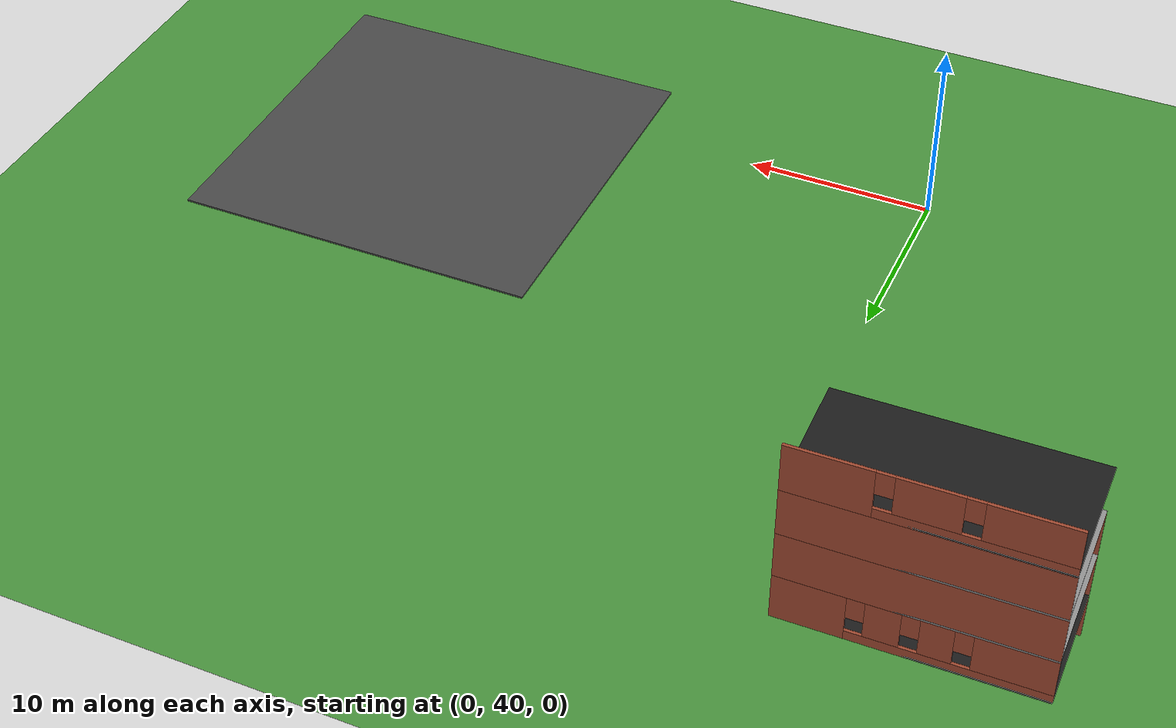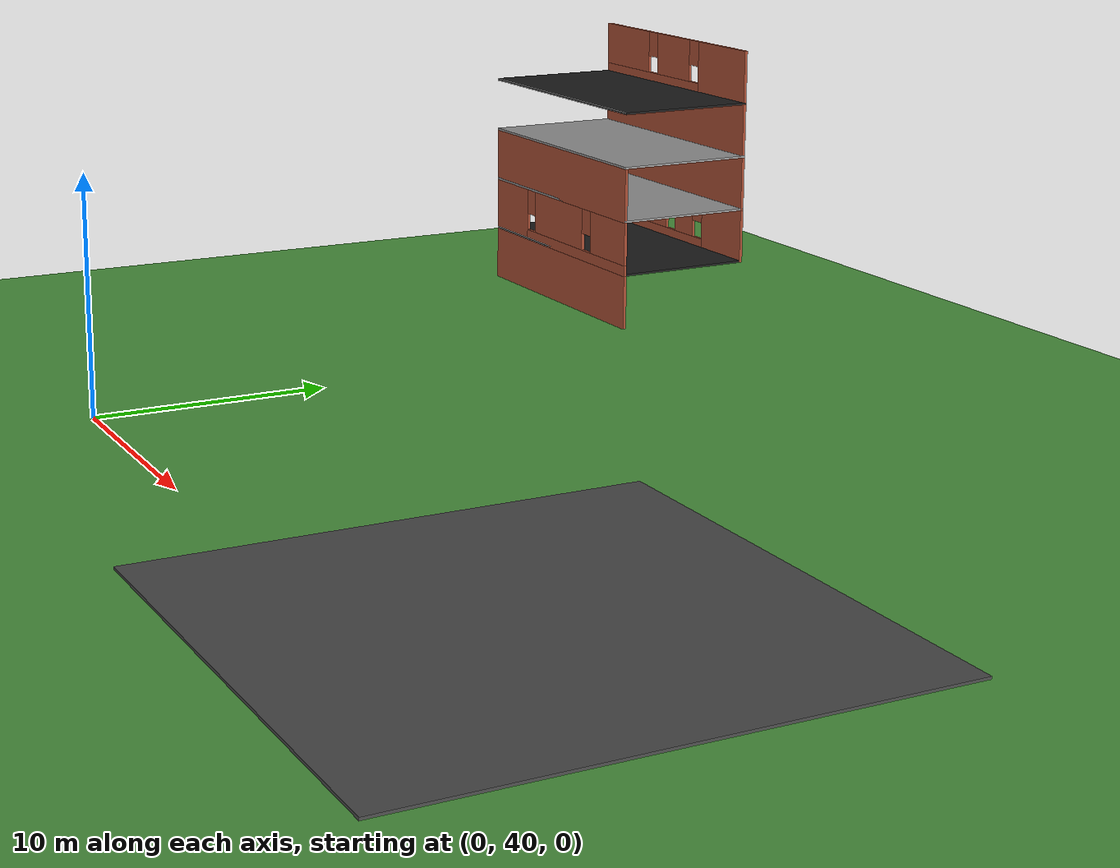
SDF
<sdf version="1.7">
 <world name="default">
  <model name="ground_plane">
   <static>1</static>
   <link name="link">
    <collision name="collision">
     <geometry><plane><normal>0 0 1</normal><size>100 100</size></plane></geometry>
     <surface>
      <contact><collide_bitmask>65535</collide_bitmask></contact>
      <friction><ode><mu>100</mu><mu2>50</mu2></ode></friction>
     </surface>
    </collision>
    <visual name="grass">
     <pose>0 0 -0.1 0 -0 0</pose>
     <cast_shadows>0</cast_shadows>
     <geometry><plane><normal>0 0 1</normal><size>1000 1000</size></plane></geometry>
     <material>
      <script><uri>file://media/materials/scripts/gazebo.material</uri><name>Gazebo/Grass</name></script>
     </material>
    </visual>
   </link>
  </model>
  <model name="asphalt_plane">
   <static>1</static>
   <link name="link">
    <collision name="collision"><geometry><box><size>20 20 0.1</size></box></geometry></collision>
    <visual name="visual">
     <cast_shadows>0</cast_shadows>
     <geometry><box><size>20 20 0.1</size></box></geometry>
     <material>
      <script>
       <uri>model://asphalt_plane/materials/scripts</uri>
       <uri>model://asphalt_plane/materials/textures</uri>
       <name>vrc/asphalt</name>
      </script>
     </material>
    </visual>
   </link>
   <pose>26.7323 45.4974 0 0 -0 0</pose>
  </model>
  <model name="my_building_1_clone_1">
   <link name="Floor_13">
    <pose>-4.12557 0 2.5 0 -0 0</pose>
    <inertial>
     <mass>1</mass>
     <inertia><ixx>1</ixx><ixy>0</ixy><ixz>0</ixz><iyy>1</iyy><iyz>0</iyz><izz>1</izz></inertia>
    </inertial>
    <visual name="Floor_13_Visual">
     <pose>0 0 0.05 0 -0 0</pose>
     <geometry><box><size>6.5 12.25 0.1</size></box></geometry>
     <material>
      <script><uri>file://media/materials/scripts/gazebo.material</uri><name>Gazebo/Black</name></script>
      <ambient>1 1 1 1</ambient>
      <shader type="pixel"><normal_map>__default__</normal_map></shader>
      <diffuse>0 0 0 1</diffuse>
      <specular>0.1 0.1 0.1 1</specular>
      <emissive>0 0 0 1</emissive>
     </material>
     <meta><layer>1</layer></meta>
    </visual>
    <collision name="Floor_13_Collision">
     <pose>0 0 0.05 0 -0 0</pose>
     <geometry><box><size>6.5 12.25 0.1</size></box></geometry>
     <surface>
      <friction>
       <ode><mu>1</mu><mu2>1</mu2><fdir1>0 0 0</fdir1><slip1>0</slip1><slip2>0</slip2></ode>
       <torsional>
        <coefficient>1</coefficient>
        <patch_radius>0</patch_radius>
        <surface_radius>0</surface_radius>
        <use_patch_radius>1</use_patch_radius>
        <ode><slip>0</slip></ode>
       </torsional>
      </friction>
      <bounce><restitution_coefficient>0</restitution_coefficient><threshold>1e+06</threshold></bounce>
      <contact>
       <collide_without_contact>0</collide_without_contact>
       <collide_without_contact_bitmask>1</collide_without_contact_bitmask>
       <collide_bitmask>1</collide_bitmask>
       <ode>
        <soft_cfm>0</soft_cfm>
        <soft_erp>0.2</soft_erp>
        <kp>1e+13</kp>
        <kd>1</kd>
        <max_vel>0.01</max_vel>
        <min_depth>0</min_depth>
       </ode>
       <bullet>
        <split_impulse>1</split_impulse>
        <split_impulse_penetration_threshold>-0.01</split_impulse_penetration_threshold>
        <soft_cfm>0</soft_cfm>
        <soft_erp>0.2</soft_erp>
        <kp>1e+13</kp>
        <kd>1</kd>
       </bullet>
      </contact>
     </surface>
    </collision>
   </link>
   <link name="Floor_14">
    <pose>-4.12557 0 5 0 -0 0</pose>
    <visual name="Floor_14_Visual">
     <pose>0 0 0.05 0 -0 0</pose>
     <geometry><box><size>6.5 12.25 0.1</size></box></geometry>
     <material>
      <script><uri>file://media/materials/scripts/gazebo.material</uri><name>Gazebo/Grey</name></script>
      <ambient>1 1 1 1</ambient>
      <shader type="pixel"/>
     </material>
     <meta><layer>2</layer></meta>
    </visual>
    <collision name="Floor_14_Collision">
     <pose>0 0 0.05 0 -0 0</pose>
     <geometry><box><size>6.5 12.25 0.1</size></box></geometry>
     <surface>
      <friction>
       <ode><mu>1</mu><mu2>1</mu2><fdir1>0 0 0</fdir1><slip1>0</slip1><slip2>0</slip2></ode>
       <torsional>
        <coefficient>1</coefficient>
        <patch_radius>0</patch_radius>
        <surface_radius>0</surface_radius>
        <use_patch_radius>1</use_patch_radius>
        <ode><slip>0</slip></ode>
       </torsional>
      </friction>
      <bounce><restitution_coefficient>0</restitution_coefficient><threshold>1e+06</threshold></bounce>
      <contact>
       <collide_without_contact>0</collide_without_contact>
       <collide_without_contact_bitmask>1</collide_without_contact_bitmask>
       <collide_bitmask>1</collide_bitmask>
       <ode>
        <soft_cfm>0</soft_cfm>
        <soft_erp>0.2</soft_erp>
        <kp>1e+13</kp>
        <kd>1</kd>
        <max_vel>0.01</max_vel>
        <min_depth>0</min_depth>
       </ode>
       <bullet>
        <split_impulse>1</split_impulse>
        <split_impulse_penetration_threshold>-0.01</split_impulse_penetration_threshold>
        <soft_cfm>0</soft_cfm>
        <soft_erp>0.2</soft_erp>
        <kp>1e+13</kp>
        <kd>1</kd>
       </bullet>
      </contact>
     </surface>
    </collision>
   </link>
   <link name="Floor_15">
    <pose>-4.12557 0 7.5 0 -0 0</pose>
    <visual name="Floor_15_Visual">
     <pose>0 0 0.05 0 -0 0</pose>
     <geometry><box><size>6.5 12.25 0.1</size></box></geometry>
     <material>
      <script><uri>file://media/materials/scripts/gazebo.material</uri><name>Gazebo/Grey</name></script>
      <ambient>1 1 1 1</ambient>
      <shader type="pixel"/>
     </material>
     <meta><layer>3</layer></meta>
    </visual>
    <collision name="Floor_15_Collision">
     <pose>0 0 0.05 0 -0 0</pose>
     <geometry><box><size>6.5 12.25 0.1</size></box></geometry>
     <surface>
      <friction>
       <ode><mu>1</mu><mu2>1</mu2><fdir1>0 0 0</fdir1><slip1>0</slip1><slip2>0</slip2></ode>
       <torsional>
        <coefficient>1</coefficient>
        <patch_radius>0</patch_radius>
        <surface_radius>0</surface_radius>
        <use_patch_radius>1</use_patch_radius>
        <ode><slip>0</slip></ode>
       </torsional>
      </friction>
      <bounce><restitution_coefficient>0</restitution_coefficient><threshold>1e+06</threshold></bounce>
      <contact>
       <collide_without_contact>0</collide_without_contact>
       <collide_without_contact_bitmask>1</collide_without_contact_bitmask>
       <collide_bitmask>1</collide_bitmask>
       <ode>
        <soft_cfm>0</soft_cfm>
        <soft_erp>0.2</soft_erp>
        <kp>1e+13</kp>
        <kd>1</kd>
        <max_vel>0.01</max_vel>
        <min_depth>0</min_depth>
       </ode>
       <bullet>
        <split_impulse>1</split_impulse>
        <split_impulse_penetration_threshold>-0.01</split_impulse_penetration_threshold>
        <soft_cfm>0</soft_cfm>
        <soft_erp>0.2</soft_erp>
        <kp>1e+13</kp>
        <kd>1</kd>
       </bullet>
      </contact>
     </surface>
    </collision>
   </link>
   <link name="Floor_16">
    <pose>-4.12557 0 10 0 -0 0</pose>
    <inertial>
     <mass>1</mass>
     <inertia><ixx>1</ixx><ixy>0</ixy><ixz>0</ixz><iyy>1</iyy><iyz>0</iyz><izz>1</izz></inertia>
    </inertial>
    <visual name="Floor_16_Visual">
     <pose>0 0 0.05 0 -0 0</pose>
     <geometry><box><size>6.5 12.25 0.1</size></box></geometry>
     <material>
      <script><uri>file://media/materials/scripts/gazebo.material</uri><name>Gazebo/Black</name></script>
      <ambient>1 1 1 1</ambient>
      <shader type="pixel"><normal_map>__default__</normal_map></shader>
      <diffuse>0 0 0 1</diffuse>
      <specular>0.1 0.1 0.1 1</specular>
      <emissive>0 0 0 1</emissive>
     </material>
     <meta><layer>4</layer></meta>
    </visual>
    <collision name="Floor_16_Collision">
     <pose>0 0 0.05 0 -0 0</pose>
     <geometry><box><size>6.5 12.25 0.1</size></box></geometry>
     <surface>
      <friction>
       <ode><mu>1</mu><mu2>1</mu2><fdir1>0 0 0</fdir1><slip1>0</slip1><slip2>0</slip2></ode>
       <torsional>
        <coefficient>1</coefficient>
        <patch_radius>0</patch_radius>
        <surface_radius>0</surface_radius>
        <use_patch_radius>1</use_patch_radius>
        <ode><slip>0</slip></ode>
       </torsional>
      </friction>
      <bounce><restitution_coefficient>0</restitution_coefficient><threshold>1e+06</threshold></bounce>
      <contact>
       <collide_without_contact>0</collide_without_contact>
       <collide_without_contact_bitmask>1</collide_without_contact_bitmask>
       <collide_bitmask>1</collide_bitmask>
       <ode>
        <soft_cfm>0</soft_cfm>
        <soft_erp>0.2</soft_erp>
        <kp>1e+13</kp>
        <kd>1</kd>
        <max_vel>0.01</max_vel>
        <min_depth>0</min_depth>
       </ode>
       <bullet>
        <split_impulse>1</split_impulse>
        <split_impulse_penetration_threshold>-0.01</split_impulse_penetration_threshold>
        <soft_cfm>0</soft_cfm>
        <soft_erp>0.2</soft_erp>
        <kp>1e+13</kp>
        <kd>1</kd>
       </bullet>
      </contact>
     </surface>
    </collision>
   </link>
   <link name="Wall_21">
    <pose>-7.30057 0 0 0 0 -1.5708</pose>
    <visual name="Wall_21_Visual">
     <pose>0 0 1.25 0 -0 0</pose>
     <geometry><box><size>12.25 0.15 2.5</size></box></geometry>
     <material>
      <script><uri>file://media/materials/scripts/gazebo.material</uri><name>Gazebo/Bricks</name></script>
      <ambient>1 1 1 1</ambient>
      <shader type="pixel"/>
     </material>
     <meta><layer>0</layer></meta>
    </visual>
    <collision name="Wall_21_Collision">
     <pose>0 0 1.25 0 -0 0</pose>
     <geometry><box><size>12.25 0.15 2.5</size></box></geometry>
     <surface>
      <friction>
       <ode><mu>1</mu><mu2>1</mu2><fdir1>0 0 0</fdir1><slip1>0</slip1><slip2>0</slip2></ode>
       <torsional>
        <coefficient>1</coefficient>
        <patch_radius>0</patch_radius>
        <surface_radius>0</surface_radius>
        <use_patch_radius>1</use_patch_radius>
        <ode><slip>0</slip></ode>
       </torsional>
      </friction>
      <bounce><restitution_coefficient>0</restitution_coefficient><threshold>1e+06</threshold></bounce>
      <contact>
       <collide_without_contact>0</collide_without_contact>
       <collide_without_contact_bitmask>1</collide_without_contact_bitmask>
       <collide_bitmask>1</collide_bitmask>
       <ode>
        <soft_cfm>0</soft_cfm>
        <soft_erp>0.2</soft_erp>
        <kp>1e+13</kp>
        <kd>1</kd>
        <max_vel>0.01</max_vel>
        <min_depth>0</min_depth>
       </ode>
       <bullet>
        <split_impulse>1</split_impulse>
        <split_impulse_penetration_threshold>-0.01</split_impulse_penetration_threshold>
        <soft_cfm>0</soft_cfm>
        <soft_erp>0.2</soft_erp>
        <kp>1e+13</kp>
        <kd>1</kd>
       </bullet>
      </contact>
     </surface>
    </collision>
   </link>
   <link name="Wall_76">
    <pose>-0.950574 0 2.5 0 -0 1.5708</pose>
    <visual name="Wall_76_Visual_4">
     <pose>4.35586 0 1.5 0 -0 0</pose>
     <geometry><box><size>3.53828 0.15 2</size></box></geometry>
     <material>
      <script><uri>file://media/materials/scripts/gazebo.material</uri><name>Gazebo/Bricks</name></script>
      <ambient>1 1 1 1</ambient>
      <shader type="pixel"/>
     </material>
     <meta><layer>1</layer></meta>
    </visual>
    <visual name="Wall_76_Visual_7">
     <pose>2.18672 0 1.9 0 -0 0</pose>
     <geometry><box><size>0.8 0.15 1.2</size></box></geometry>
     <material>
      <script><uri>file://media/materials/scripts/gazebo.material</uri><name>Gazebo/Bricks</name></script>
      <ambient>1 1 1 1</ambient>
      <shader type="pixel"/>
     </material>
     <meta><layer>1</layer></meta>
    </visual>
    <visual name="Wall_76_Visual_5">
     <pose>-2.44171 0 1.9 0 -0 0</pose>
     <geometry><box><size>0.8 0.15 1.2</size></box></geometry>
     <material>
      <script><uri>file://media/materials/scripts/gazebo.material</uri><name>Gazebo/Bricks</name></script>
      <ambient>1 1 1 1</ambient>
      <shader type="pixel"/>
     </material>
     <meta><layer>1</layer></meta>
    </visual>
    <visual name="Wall_76_Visual_6">
     <pose>-0.074293 0 1.9 0 -0 0</pose>
     <geometry><box><size>0.8 0.15 1.2</size></box></geometry>
     <material>
      <script><uri>file://media/materials/scripts/gazebo.material</uri><name>Gazebo/Bricks</name></script>
      <ambient>1 1 1 1</ambient>
      <shader type="pixel"/>
     </material>
     <meta><layer>1</layer></meta>
    </visual>
    <visual name="Wall_76_Visual_0">
     <pose>-4.48336 0 1.25 0 -0 0</pose>
     <geometry><box><size>3.28329 0.15 2.5</size></box></geometry>
     <material>
      <script><uri>file://media/materials/scripts/gazebo.material</uri><name>Gazebo/Bricks</name></script>
      <ambient>1 1 1 1</ambient>
      <shader type="pixel"/>
     </material>
     <meta><layer>1</layer></meta>
    </visual>
    <visual name="Wall_76_Visual_3">
     <pose>1.05621 0 1.5 0 -0 0</pose>
     <geometry><box><size>1.46102 0.15 2</size></box></geometry>
     <material>
      <script><uri>file://media/materials/scripts/gazebo.material</uri><name>Gazebo/Bricks</name></script>
      <ambient>1 1 1 1</ambient>
      <shader type="pixel"/>
     </material>
     <meta><layer>1</layer></meta>
    </visual>
    <visual name="Wall_76_Visual_1">
     <pose>1.64164 0 0.25 0 -0 0</pose>
     <geometry><box><size>8.96671 0.15 0.5</size></box></geometry>
     <material>
      <script><uri>file://media/materials/scripts/gazebo.material</uri><name>Gazebo/Bricks</name></script>
      <ambient>1 1 1 1</ambient>
      <shader type="pixel"/>
     </material>
     <meta><layer>1</layer></meta>
    </visual>
    <visual name="Wall_76_Visual_2">
     <pose>-1.258 0 1.5 0 -0 0</pose>
     <geometry><box><size>1.56742 0.15 2</size></box></geometry>
     <material>
      <script><uri>file://media/materials/scripts/gazebo.material</uri><name>Gazebo/Bricks</name></script>
      <ambient>1 1 1 1</ambient>
      <shader type="pixel"/>
     </material>
     <meta><layer>1</layer></meta>
    </visual>
    <collision name="Wall_76_Collision_3">
     <pose>1.05621 0 1.5 0 -0 0</pose>
     <geometry><box><size>1.46102 0.15 2</size></box></geometry>
     <surface>
      <friction>
       <ode><mu>1</mu><mu2>1</mu2><fdir1>0 0 0</fdir1><slip1>0</slip1><slip2>0</slip2></ode>
       <torsional>
        <coefficient>1</coefficient>
        <patch_radius>0</patch_radius>
        <surface_radius>0</surface_radius>
        <use_patch_radius>1</use_patch_radius>
        <ode><slip>0</slip></ode>
       </torsional>
      </friction>
      <bounce><restitution_coefficient>0</restitution_coefficient><threshold>1e+06</threshold></bounce>
      <contact>
       <collide_without_contact>0</collide_without_contact>
       <collide_without_contact_bitmask>1</collide_without_contact_bitmask>
       <collide_bitmask>1</collide_bitmask>
       <ode>
        <soft_cfm>0</soft_cfm>
        <soft_erp>0.2</soft_erp>
        <kp>1e+13</kp>
        <kd>1</kd>
        <max_vel>0.01</max_vel>
        <min_depth>0</min_depth>
       </ode>
       <bullet>
        <split_impulse>1</split_impulse>
        <split_impulse_penetration_threshold>-0.01</split_impulse_penetration_threshold>
        <soft_cfm>0</soft_cfm>
        <soft_erp>0.2</soft_erp>
        <kp>1e+13</kp>
        <kd>1</kd>
       </bullet>
      </contact>
     </surface>
    </collision>
    <collision name="Wall_76_Collision_1">
     <pose>1.64164 0 0.25 0 -0 0</pose>
     <geometry><box><size>8.96671 0.15 0.5</size></box></geometry>
     <surface>
      <friction>
       <ode><mu>1</mu><mu2>1</mu2><fdir1>0 0 0</fdir1><slip1>0</slip1><slip2>0</slip2></ode>
       <torsional>
        <coefficient>1</coefficient>
        <patch_radius>0</patch_radius>
        <surface_radius>0</surface_radius>
        <use_patch_radius>1</use_patch_radius>
        <ode><slip>0</slip></ode>
       </torsional>
      </friction>
      <bounce><restitution_coefficient>0</restitution_coefficient><threshold>1e+06</threshold></bounce>
      <contact>
       <collide_without_contact>0</collide_without_contact>
       <collide_without_contact_bitmask>1</collide_without_contact_bitmask>
       <collide_bitmask>1</collide_bitmask>
       <ode>
        <soft_cfm>0</soft_cfm>
        <soft_erp>0.2</soft_erp>
        <kp>1e+13</kp>
        <kd>1</kd>
        <max_vel>0.01</max_vel>
        <min_depth>0</min_depth>
       </ode>
       <bullet>
        <split_impulse>1</split_impulse>
        <split_impulse_penetration_threshold>-0.01</split_impulse_penetration_threshold>
        <soft_cfm>0</soft_cfm>
        <soft_erp>0.2</soft_erp>
        <kp>1e+13</kp>
        <kd>1</kd>
       </bullet>
      </contact>
     </surface>
    </collision>
    <collision name="Wall_76_Collision_6">
     <pose>-0.074293 0 1.9 0 -0 0</pose>
     <geometry><box><size>0.8 0.15 1.2</size></box></geometry>
     <surface>
      <friction>
       <ode><mu>1</mu><mu2>1</mu2><fdir1>0 0 0</fdir1><slip1>0</slip1><slip2>0</slip2></ode>
       <torsional>
        <coefficient>1</coefficient>
        <patch_radius>0</patch_radius>
        <surface_radius>0</surface_radius>
        <use_patch_radius>1</use_patch_radius>
        <ode><slip>0</slip></ode>
       </torsional>
      </friction>
      <bounce><restitution_coefficient>0</restitution_coefficient><threshold>1e+06</threshold></bounce>
      <contact>
       <collide_without_contact>0</collide_without_contact>
       <collide_without_contact_bitmask>1</collide_without_contact_bitmask>
       <collide_bitmask>1</collide_bitmask>
       <ode>
        <soft_cfm>0</soft_cfm>
        <soft_erp>0.2</soft_erp>
        <kp>1e+13</kp>
        <kd>1</kd>
        <max_vel>0.01</max_vel>
        <min_depth>0</min_depth>
       </ode>
       <bullet>
        <split_impulse>1</split_impulse>
        <split_impulse_penetration_threshold>-0.01</split_impulse_penetration_threshold>
        <soft_cfm>0</soft_cfm>
        <soft_erp>0.2</soft_erp>
        <kp>1e+13</kp>
        <kd>1</kd>
       </bullet>
      </contact>
     </surface>
    </collision>
    <collision name="Wall_76_Collision_5">
     <pose>-2.44171 0 1.9 0 -0 0</pose>
     <geometry><box><size>0.8 0.15 1.2</size></box></geometry>
     <surface>
      <friction>
       <ode><mu>1</mu><mu2>1</mu2><fdir1>0 0 0</fdir1><slip1>0</slip1><slip2>0</slip2></ode>
       <torsional>
        <coefficient>1</coefficient>
        <patch_radius>0</patch_radius>
        <surface_radius>0</surface_radius>
        <use_patch_radius>1</use_patch_radius>
        <ode><slip>0</slip></ode>
       </torsional>
      </friction>
      <bounce><restitution_coefficient>0</restitution_coefficient><threshold>1e+06</threshold></bounce>
      <contact>
       <collide_without_contact>0</collide_without_contact>
       <collide_without_contact_bitmask>1</collide_without_contact_bitmask>
       <collide_bitmask>1</collide_bitmask>
       <ode>
        <soft_cfm>0</soft_cfm>
        <soft_erp>0.2</soft_erp>
        <kp>1e+13</kp>
        <kd>1</kd>
        <max_vel>0.01</max_vel>
        <min_depth>0</min_depth>
       </ode>
       <bullet>
        <split_impulse>1</split_impulse>
        <split_impulse_penetration_threshold>-0.01</split_impulse_penetration_threshold>
        <soft_cfm>0</soft_cfm>
        <soft_erp>0.2</soft_erp>
        <kp>1e+13</kp>
        <kd>1</kd>
       </bullet>
      </contact>
     </surface>
    </collision>
    <collision name="Wall_76_Collision_0">
     <pose>-4.48336 0 1.25 0 -0 0</pose>
     <geometry><box><size>3.28329 0.15 2.5</size></box></geometry>
     <surface>
      <friction>
       <ode><mu>1</mu><mu2>1</mu2><fdir1>0 0 0</fdir1><slip1>0</slip1><slip2>0</slip2></ode>
       <torsional>
        <coefficient>1</coefficient>
        <patch_radius>0</patch_radius>
        <surface_radius>0</surface_radius>
        <use_patch_radius>1</use_patch_radius>
        <ode><slip>0</slip></ode>
       </torsional>
      </friction>
      <bounce><restitution_coefficient>0</restitution_coefficient><threshold>1e+06</threshold></bounce>
      <contact>
       <collide_without_contact>0</collide_without_contact>
       <collide_without_contact_bitmask>1</collide_without_contact_bitmask>
       <collide_bitmask>1</collide_bitmask>
       <ode>
        <soft_cfm>0</soft_cfm>
        <soft_erp>0.2</soft_erp>
        <kp>1e+13</kp>
        <kd>1</kd>
        <max_vel>0.01</max_vel>
        <min_depth>0</min_depth>
       </ode>
       <bullet>
        <split_impulse>1</split_impulse>
        <split_impulse_penetration_threshold>-0.01</split_impulse_penetration_threshold>
        <soft_cfm>0</soft_cfm>
        <soft_erp>0.2</soft_erp>
        <kp>1e+13</kp>
        <kd>1</kd>
       </bullet>
      </contact>
     </surface>
    </collision>
    <collision name="Wall_76_Collision_2">
     <pose>-1.258 0 1.5 0 -0 0</pose>
     <geometry><box><size>1.56742 0.15 2</size></box></geometry>
     <surface>
      <friction>
       <ode><mu>1</mu><mu2>1</mu2><fdir1>0 0 0</fdir1><slip1>0</slip1><slip2>0</slip2></ode>
       <torsional>
        <coefficient>1</coefficient>
        <patch_radius>0</patch_radius>
        <surface_radius>0</surface_radius>
        <use_patch_radius>1</use_patch_radius>
        <ode><slip>0</slip></ode>
       </torsional>
      </friction>
      <bounce><restitution_coefficient>0</restitution_coefficient><threshold>1e+06</threshold></bounce>
      <contact>
       <collide_without_contact>0</collide_without_contact>
       <collide_without_contact_bitmask>1</collide_without_contact_bitmask>
       <collide_bitmask>1</collide_bitmask>
       <ode>
        <soft_cfm>0</soft_cfm>
        <soft_erp>0.2</soft_erp>
        <kp>1e+13</kp>
        <kd>1</kd>
        <max_vel>0.01</max_vel>
        <min_depth>0</min_depth>
       </ode>
       <bullet>
        <split_impulse>1</split_impulse>
        <split_impulse_penetration_threshold>-0.01</split_impulse_penetration_threshold>
        <soft_cfm>0</soft_cfm>
        <soft_erp>0.2</soft_erp>
        <kp>1e+13</kp>
        <kd>1</kd>
       </bullet>
      </contact>
     </surface>
    </collision>
    <collision name="Wall_76_Collision_7">
     <pose>2.18672 0 1.9 0 -0 0</pose>
     <geometry><box><size>0.8 0.15 1.2</size></box></geometry>
     <surface>
      <friction>
       <ode><mu>1</mu><mu2>1</mu2><fdir1>0 0 0</fdir1><slip1>0</slip1><slip2>0</slip2></ode>
       <torsional>
        <coefficient>1</coefficient>
        <patch_radius>0</patch_radius>
        <surface_radius>0</surface_radius>
        <use_patch_radius>1</use_patch_radius>
        <ode><slip>0</slip></ode>
       </torsional>
      </friction>
      <bounce><restitution_coefficient>0</restitution_coefficient><threshold>1e+06</threshold></bounce>
      <contact>
       <collide_without_contact>0</collide_without_contact>
       <collide_without_contact_bitmask>1</collide_without_contact_bitmask>
       <collide_bitmask>1</collide_bitmask>
       <ode>
        <soft_cfm>0</soft_cfm>
        <soft_erp>0.2</soft_erp>
        <kp>1e+13</kp>
        <kd>1</kd>
        <max_vel>0.01</max_vel>
        <min_depth>0</min_depth>
       </ode>
       <bullet>
        <split_impulse>1</split_impulse>
        <split_impulse_penetration_threshold>-0.01</split_impulse_penetration_threshold>
        <soft_cfm>0</soft_cfm>
        <soft_erp>0.2</soft_erp>
        <kp>1e+13</kp>
        <kd>1</kd>
       </bullet>
      </contact>
     </surface>
    </collision>
    <collision name="Wall_76_Collision_4">
     <pose>4.35586 0 1.5 0 -0 0</pose>
     <geometry><box><size>3.53828 0.15 2</size></box></geometry>
     <surface>
      <friction>
       <ode><mu>1</mu><mu2>1</mu2><fdir1>0 0 0</fdir1><slip1>0</slip1><slip2>0</slip2></ode>
       <torsional>
        <coefficient>1</coefficient>
        <patch_radius>0</patch_radius>
        <surface_radius>0</surface_radius>
        <use_patch_radius>1</use_patch_radius>
        <ode><slip>0</slip></ode>
       </torsional>
      </friction>
      <bounce><restitution_coefficient>0</restitution_coefficient><threshold>1e+06</threshold></bounce>
      <contact>
       <collide_without_contact>0</collide_without_contact>
       <collide_without_contact_bitmask>1</collide_without_contact_bitmask>
       <collide_bitmask>1</collide_bitmask>
       <ode>
        <soft_cfm>0</soft_cfm>
        <soft_erp>0.2</soft_erp>
        <kp>1e+13</kp>
        <kd>1</kd>
        <max_vel>0.01</max_vel>
        <min_depth>0</min_depth>
       </ode>
       <bullet>
        <split_impulse>1</split_impulse>
        <split_impulse_penetration_threshold>-0.01</split_impulse_penetration_threshold>
        <soft_cfm>0</soft_cfm>
        <soft_erp>0.2</soft_erp>
        <kp>1e+13</kp>
        <kd>1</kd>
       </bullet>
      </contact>
     </surface>
    </collision>
   </link>
   <link name="Wall_78">
    <pose>-7.30057 0 2.5 0 0 -1.5708</pose>
    <visual name="Wall_78_Visual_1">
     <pose>1.54304 0 0.25 0 -0 0</pose>
     <geometry><box><size>9.16393 0.15 0.5</size></box></geometry>
     <material>
      <script><uri>file://media/materials/scripts/gazebo.material</uri><name>Gazebo/Bricks</name></script>
      <ambient>1 1 1 1</ambient>
      <shader type="pixel"/>
     </material>
     <meta><layer>1</layer></meta>
    </visual>
    <visual name="Wall_78_Visual_5">
     <pose>2.65451 0 1.9 0 -0 0</pose>
     <geometry><box><size>0.8 0.15 1.2</size></box></geometry>
     <material>
      <script><uri>file://media/materials/scripts/gazebo.material</uri><name>Gazebo/Bricks</name></script>
      <ambient>1 1 1 1</ambient>
      <shader type="pixel"/>
     </material>
     <meta><layer>1</layer></meta>
    </visual>
    <visual name="Wall_78_Visual_3">
     <pose>4.58976 0 1.5 0 -0 0</pose>
     <geometry><box><size>3.07049 0.15 2</size></box></geometry>
     <material>
      <script><uri>file://media/materials/scripts/gazebo.material</uri><name>Gazebo/Bricks</name></script>
      <ambient>1 1 1 1</ambient>
      <shader type="pixel"/>
     </material>
     <meta><layer>1</layer></meta>
    </visual>
    <visual name="Wall_78_Visual_4">
     <pose>-2.63893 0 1.9 0 -0 0</pose>
     <geometry><box><size>0.8 0.15 1.2</size></box></geometry>
     <material>
      <script><uri>file://media/materials/scripts/gazebo.material</uri><name>Gazebo/Bricks</name></script>
      <ambient>1 1 1 1</ambient>
      <shader type="pixel"/>
     </material>
     <meta><layer>1</layer></meta>
    </visual>
    <visual name="Wall_78_Visual_2">
     <pose>0.007793 0 1.5 0 -0 0</pose>
     <geometry><box><size>4.49344 0.15 2</size></box></geometry>
     <material>
      <script><uri>file://media/materials/scripts/gazebo.material</uri><name>Gazebo/Bricks</name></script>
      <ambient>1 1 1 1</ambient>
      <shader type="pixel"/>
     </material>
     <meta><layer>1</layer></meta>
    </visual>
    <visual name="Wall_78_Visual_0">
     <pose>-4.58196 0 1.25 0 -0 0</pose>
     <geometry><box><size>3.08607 0.15 2.5</size></box></geometry>
     <material>
      <script><uri>file://media/materials/scripts/gazebo.material</uri><name>Gazebo/Bricks</name></script>
      <ambient>1 1 1 1</ambient>
      <shader type="pixel"/>
     </material>
     <meta><layer>1</layer></meta>
    </visual>
    <collision name="Wall_78_Collision_0">
     <pose>-4.58196 0 1.25 0 -0 0</pose>
     <geometry><box><size>3.08607 0.15 2.5</size></box></geometry>
     <surface>
      <friction>
       <ode><mu>1</mu><mu2>1</mu2><fdir1>0 0 0</fdir1><slip1>0</slip1><slip2>0</slip2></ode>
       <torsional>
        <coefficient>1</coefficient>
        <patch_radius>0</patch_radius>
        <surface_radius>0</surface_radius>
        <use_patch_radius>1</use_patch_radius>
        <ode><slip>0</slip></ode>
       </torsional>
      </friction>
      <bounce><restitution_coefficient>0</restitution_coefficient><threshold>1e+06</threshold></bounce>
      <contact>
       <collide_without_contact>0</collide_without_contact>
       <collide_without_contact_bitmask>1</collide_without_contact_bitmask>
       <collide_bitmask>1</collide_bitmask>
       <ode>
        <soft_cfm>0</soft_cfm>
        <soft_erp>0.2</soft_erp>
        <kp>1e+13</kp>
        <kd>1</kd>
        <max_vel>0.01</max_vel>
        <min_depth>0</min_depth>
       </ode>
       <bullet>
        <split_impulse>1</split_impulse>
        <split_impulse_penetration_threshold>-0.01</split_impulse_penetration_threshold>
        <soft_cfm>0</soft_cfm>
        <soft_erp>0.2</soft_erp>
        <kp>1e+13</kp>
        <kd>1</kd>
       </bullet>
      </contact>
     </surface>
    </collision>
    <collision name="Wall_78_Collision_1">
     <pose>1.54304 0 0.25 0 -0 0</pose>
     <geometry><box><size>9.16393 0.15 0.5</size></box></geometry>
     <surface>
      <friction>
       <ode><mu>1</mu><mu2>1</mu2><fdir1>0 0 0</fdir1><slip1>0</slip1><slip2>0</slip2></ode>
       <torsional>
        <coefficient>1</coefficient>
        <patch_radius>0</patch_radius>
        <surface_radius>0</surface_radius>
        <use_patch_radius>1</use_patch_radius>
        <ode><slip>0</slip></ode>
       </torsional>
      </friction>
      <bounce><restitution_coefficient>0</restitution_coefficient><threshold>1e+06</threshold></bounce>
      <contact>
       <collide_without_contact>0</collide_without_contact>
       <collide_without_contact_bitmask>1</collide_without_contact_bitmask>
       <collide_bitmask>1</collide_bitmask>
       <ode>
        <soft_cfm>0</soft_cfm>
        <soft_erp>0.2</soft_erp>
        <kp>1e+13</kp>
        <kd>1</kd>
        <max_vel>0.01</max_vel>
        <min_depth>0</min_depth>
       </ode>
       <bullet>
        <split_impulse>1</split_impulse>
        <split_impulse_penetration_threshold>-0.01</split_impulse_penetration_threshold>
        <soft_cfm>0</soft_cfm>
        <soft_erp>0.2</soft_erp>
        <kp>1e+13</kp>
        <kd>1</kd>
       </bullet>
      </contact>
     </surface>
    </collision>
    <collision name="Wall_78_Collision_5">
     <pose>2.65451 0 1.9 0 -0 0</pose>
     <geometry><box><size>0.8 0.15 1.2</size></box></geometry>
     <surface>
      <friction>
       <ode><mu>1</mu><mu2>1</mu2><fdir1>0 0 0</fdir1><slip1>0</slip1><slip2>0</slip2></ode>
       <torsional>
        <coefficient>1</coefficient>
        <patch_radius>0</patch_radius>
        <surface_radius>0</surface_radius>
        <use_patch_radius>1</use_patch_radius>
        <ode><slip>0</slip></ode>
       </torsional>
      </friction>
      <bounce><restitution_coefficient>0</restitution_coefficient><threshold>1e+06</threshold></bounce>
      <contact>
       <collide_without_contact>0</collide_without_contact>
       <collide_without_contact_bitmask>1</collide_without_contact_bitmask>
       <collide_bitmask>1</collide_bitmask>
       <ode>
        <soft_cfm>0</soft_cfm>
        <soft_erp>0.2</soft_erp>
        <kp>1e+13</kp>
        <kd>1</kd>
        <max_vel>0.01</max_vel>
        <min_depth>0</min_depth>
       </ode>
       <bullet>
        <split_impulse>1</split_impulse>
        <split_impulse_penetration_threshold>-0.01</split_impulse_penetration_threshold>
        <soft_cfm>0</soft_cfm>
        <soft_erp>0.2</soft_erp>
        <kp>1e+13</kp>
        <kd>1</kd>
       </bullet>
      </contact>
     </surface>
    </collision>
    <collision name="Wall_78_Collision_3">
     <pose>4.58976 0 1.5 0 -0 0</pose>
     <geometry><box><size>3.07049 0.15 2</size></box></geometry>
     <surface>
      <friction>
       <ode><mu>1</mu><mu2>1</mu2><fdir1>0 0 0</fdir1><slip1>0</slip1><slip2>0</slip2></ode>
       <torsional>
        <coefficient>1</coefficient>
        <patch_radius>0</patch_radius>
        <surface_radius>0</surface_radius>
        <use_patch_radius>1</use_patch_radius>
        <ode><slip>0</slip></ode>
       </torsional>
      </friction>
      <bounce><restitution_coefficient>0</restitution_coefficient><threshold>1e+06</threshold></bounce>
      <contact>
       <collide_without_contact>0</collide_without_contact>
       <collide_without_contact_bitmask>1</collide_without_contact_bitmask>
       <collide_bitmask>1</collide_bitmask>
       <ode>
        <soft_cfm>0</soft_cfm>
        <soft_erp>0.2</soft_erp>
        <kp>1e+13</kp>
        <kd>1</kd>
        <max_vel>0.01</max_vel>
        <min_depth>0</min_depth>
       </ode>
       <bullet>
        <split_impulse>1</split_impulse>
        <split_impulse_penetration_threshold>-0.01</split_impulse_penetration_threshold>
        <soft_cfm>0</soft_cfm>
        <soft_erp>0.2</soft_erp>
        <kp>1e+13</kp>
        <kd>1</kd>
       </bullet>
      </contact>
     </surface>
    </collision>
    <collision name="Wall_78_Collision_4">
     <pose>-2.63893 0 1.9 0 -0 0</pose>
     <geometry><box><size>0.8 0.15 1.2</size></box></geometry>
     <surface>
      <friction>
       <ode><mu>1</mu><mu2>1</mu2><fdir1>0 0 0</fdir1><slip1>0</slip1><slip2>0</slip2></ode>
       <torsional>
        <coefficient>1</coefficient>
        <patch_radius>0</patch_radius>
        <surface_radius>0</surface_radius>
        <use_patch_radius>1</use_patch_radius>
        <ode><slip>0</slip></ode>
       </torsional>
      </friction>
      <bounce><restitution_coefficient>0</restitution_coefficient><threshold>1e+06</threshold></bounce>
      <contact>
       <collide_without_contact>0</collide_without_contact>
       <collide_without_contact_bitmask>1</collide_without_contact_bitmask>
       <collide_bitmask>1</collide_bitmask>
       <ode>
        <soft_cfm>0</soft_cfm>
        <soft_erp>0.2</soft_erp>
        <kp>1e+13</kp>
        <kd>1</kd>
        <max_vel>0.01</max_vel>
        <min_depth>0</min_depth>
       </ode>
       <bullet>
        <split_impulse>1</split_impulse>
        <split_impulse_penetration_threshold>-0.01</split_impulse_penetration_threshold>
        <soft_cfm>0</soft_cfm>
        <soft_erp>0.2</soft_erp>
        <kp>1e+13</kp>
        <kd>1</kd>
       </bullet>
      </contact>
     </surface>
    </collision>
    <collision name="Wall_78_Collision_2">
     <pose>0.007793 0 1.5 0 -0 0</pose>
     <geometry><box><size>4.49344 0.15 2</size></box></geometry>
     <surface>
      <friction>
       <ode><mu>1</mu><mu2>1</mu2><fdir1>0 0 0</fdir1><slip1>0</slip1><slip2>0</slip2></ode>
       <torsional>
        <coefficient>1</coefficient>
        <patch_radius>0</patch_radius>
        <surface_radius>0</surface_radius>
        <use_patch_radius>1</use_patch_radius>
        <ode><slip>0</slip></ode>
       </torsional>
      </friction>
      <bounce><restitution_coefficient>0</restitution_coefficient><threshold>1e+06</threshold></bounce>
      <contact>
       <collide_without_contact>0</collide_without_contact>
       <collide_without_contact_bitmask>1</collide_without_contact_bitmask>
       <collide_bitmask>1</collide_bitmask>
       <ode>
        <soft_cfm>0</soft_cfm>
        <soft_erp>0.2</soft_erp>
        <kp>1e+13</kp>
        <kd>1</kd>
        <max_vel>0.01</max_vel>
        <min_depth>0</min_depth>
       </ode>
       <bullet>
        <split_impulse>1</split_impulse>
        <split_impulse_penetration_threshold>-0.01</split_impulse_penetration_threshold>
        <soft_cfm>0</soft_cfm>
        <soft_erp>0.2</soft_erp>
        <kp>1e+13</kp>
        <kd>1</kd>
       </bullet>
      </contact>
     </surface>
    </collision>
   </link>
   <link name="Wall_80">
    <pose>-0.950574 0 5 0 -0 1.5708</pose>
    <visual name="Wall_80_Visual">
     <pose>0 0 1.25 0 -0 0</pose>
     <geometry><box><size>12.25 0.15 2.5</size></box></geometry>
     <material>
      <script><uri>file://media/materials/scripts/gazebo.material</uri><name>Gazebo/Bricks</name></script>
      <ambient>1 1 1 1</ambient>
      <shader type="pixel"/>
     </material>
     <meta><layer>2</layer></meta>
    </visual>
    <collision name="Wall_80_Collision">
     <pose>0 0 1.25 0 -0 0</pose>
     <geometry><box><size>12.25 0.15 2.5</size></box></geometry>
     <surface>
      <friction>
       <ode><mu>1</mu><mu2>1</mu2><fdir1>0 0 0</fdir1><slip1>0</slip1><slip2>0</slip2></ode>
       <torsional>
        <coefficient>1</coefficient>
        <patch_radius>0</patch_radius>
        <surface_radius>0</surface_radius>
        <use_patch_radius>1</use_patch_radius>
        <ode><slip>0</slip></ode>
       </torsional>
      </friction>
      <bounce><restitution_coefficient>0</restitution_coefficient><threshold>1e+06</threshold></bounce>
      <contact>
       <collide_without_contact>0</collide_without_contact>
       <collide_without_contact_bitmask>1</collide_without_contact_bitmask>
       <collide_bitmask>1</collide_bitmask>
       <ode>
        <soft_cfm>0</soft_cfm>
        <soft_erp>0.2</soft_erp>
        <kp>1e+13</kp>
        <kd>1</kd>
        <max_vel>0.01</max_vel>
        <min_depth>0</min_depth>
       </ode>
       <bullet>
        <split_impulse>1</split_impulse>
        <split_impulse_penetration_threshold>-0.01</split_impulse_penetration_threshold>
        <soft_cfm>0</soft_cfm>
        <soft_erp>0.2</soft_erp>
        <kp>1e+13</kp>
        <kd>1</kd>
       </bullet>
      </contact>
     </surface>
    </collision>
   </link>
   <link name="Wall_82">
    <pose>-7.30057 0 5 0 0 -1.5708</pose>
    <visual name="Wall_82_Visual">
     <pose>0 0 1.25 0 -0 0</pose>
     <geometry><box><size>12.25 0.15 2.5</size></box></geometry>
     <material>
      <script><uri>file://media/materials/scripts/gazebo.material</uri><name>Gazebo/Bricks</name></script>
      <ambient>1 1 1 1</ambient>
      <shader type="pixel"/>
     </material>
     <meta><layer>2</layer></meta>
    </visual>
    <collision name="Wall_82_Collision">
     <pose>0 0 1.25 0 -0 0</pose>
     <geometry><box><size>12.25 0.15 2.5</size></box></geometry>
     <surface>
      <friction>
       <ode><mu>1</mu><mu2>1</mu2><fdir1>0 0 0</fdir1><slip1>0</slip1><slip2>0</slip2></ode>
       <torsional>
        <coefficient>1</coefficient>
        <patch_radius>0</patch_radius>
        <surface_radius>0</surface_radius>
        <use_patch_radius>1</use_patch_radius>
        <ode><slip>0</slip></ode>
       </torsional>
      </friction>
      <bounce><restitution_coefficient>0</restitution_coefficient><threshold>1e+06</threshold></bounce>
      <contact>
       <collide_without_contact>0</collide_without_contact>
       <collide_without_contact_bitmask>1</collide_without_contact_bitmask>
       <collide_bitmask>1</collide_bitmask>
       <ode>
        <soft_cfm>0</soft_cfm>
        <soft_erp>0.2</soft_erp>
        <kp>1e+13</kp>
        <kd>1</kd>
        <max_vel>0.01</max_vel>
        <min_depth>0</min_depth>
       </ode>
       <bullet>
        <split_impulse>1</split_impulse>
        <split_impulse_penetration_threshold>-0.01</split_impulse_penetration_threshold>
        <soft_cfm>0</soft_cfm>
        <soft_erp>0.2</soft_erp>
        <kp>1e+13</kp>
        <kd>1</kd>
       </bullet>
      </contact>
     </surface>
    </collision>
   </link>
   <link name="Wall_84">
    <pose>-0.950574 0 7.5 0 -0 1.5708</pose>
    <visual name="Wall_84_Visual">
     <pose>0 0 1.25 0 -0 0</pose>
     <geometry><box><size>12.25 0.15 2.5</size></box></geometry>
     <material>
      <script><uri>file://media/materials/scripts/gazebo.material</uri><name>Gazebo/Bricks</name></script>
      <ambient>1 1 1 1</ambient>
      <shader type="pixel"/>
     </material>
     <meta><layer>3</layer></meta>
    </visual>
    <collision name="Wall_84_Collision">
     <pose>0 0 1.25 0 -0 0</pose>
     <geometry><box><size>12.25 0.15 2.5</size></box></geometry>
     <surface>
      <friction>
       <ode><mu>1</mu><mu2>1</mu2><fdir1>0 0 0</fdir1><slip1>0</slip1><slip2>0</slip2></ode>
       <torsional>
        <coefficient>1</coefficient>
        <patch_radius>0</patch_radius>
        <surface_radius>0</surface_radius>
        <use_patch_radius>1</use_patch_radius>
        <ode><slip>0</slip></ode>
       </torsional>
      </friction>
      <bounce><restitution_coefficient>0</restitution_coefficient><threshold>1e+06</threshold></bounce>
      <contact>
       <collide_without_contact>0</collide_without_contact>
       <collide_without_contact_bitmask>1</collide_without_contact_bitmask>
       <collide_bitmask>1</collide_bitmask>
       <ode>
        <soft_cfm>0</soft_cfm>
        <soft_erp>0.2</soft_erp>
        <kp>1e+13</kp>
        <kd>1</kd>
        <max_vel>0.01</max_vel>
        <min_depth>0</min_depth>
       </ode>
       <bullet>
        <split_impulse>1</split_impulse>
        <split_impulse_penetration_threshold>-0.01</split_impulse_penetration_threshold>
        <soft_cfm>0</soft_cfm>
        <soft_erp>0.2</soft_erp>
        <kp>1e+13</kp>
        <kd>1</kd>
       </bullet>
      </contact>
     </surface>
    </collision>
   </link>
   <link name="Wall_88">
    <pose>-0.950574 0 10 0 -0 1.5708</pose>
    <visual name="Wall_88_Visual_1">
     <pose>1.94755 0 0.25 0 -0 0</pose>
     <geometry><box><size>8.35491 0.15 0.5</size></box></geometry>
     <material>
      <script><uri>file://media/materials/scripts/gazebo.material</uri><name>Gazebo/Bricks</name></script>
      <ambient>1 1 1 1</ambient>
      <shader type="pixel"/>
     </material>
     <meta><layer>4</layer></meta>
    </visual>
    <visual name="Wall_88_Visual_2">
     <pose>-0.007793 0 1.5 0 -0 0</pose>
     <geometry><box><size>2.84423 0.15 2</size></box></geometry>
     <material>
      <script><uri>file://media/materials/scripts/gazebo.material</uri><name>Gazebo/Bricks</name></script>
      <ambient>1 1 1 1</ambient>
      <shader type="pixel"/>
     </material>
     <meta><layer>4</layer></meta>
    </visual>
    <visual name="Wall_88_Visual_4">
     <pose>-1.82991 0 1.9 0 -0 0</pose>
     <geometry><box><size>0.8 0.15 1.2</size></box></geometry>
     <material>
      <script><uri>file://media/materials/scripts/gazebo.material</uri><name>Gazebo/Bricks</name></script>
      <ambient>1 1 1 1</ambient>
      <shader type="pixel"/>
     </material>
     <meta><layer>4</layer></meta>
    </visual>
    <visual name="Wall_88_Visual_5">
     <pose>1.81432 0 1.9 0 -0 0</pose>
     <geometry><box><size>0.8 0.15 1.2</size></box></geometry>
     <material>
      <script><uri>file://media/materials/scripts/gazebo.material</uri><name>Gazebo/Bricks</name></script>
      <ambient>1 1 1 1</ambient>
      <shader type="pixel"/>
     </material>
     <meta><layer>4</layer></meta>
    </visual>
    <visual name="Wall_88_Visual_3">
     <pose>4.16966 0 1.5 0 -0 0</pose>
     <geometry><box><size>3.91068 0.15 2</size></box></geometry>
     <material>
      <script><uri>file://media/materials/scripts/gazebo.material</uri><name>Gazebo/Bricks</name></script>
      <ambient>1 1 1 1</ambient>
      <shader type="pixel"/>
     </material>
     <meta><layer>4</layer></meta>
    </visual>
    <visual name="Wall_88_Visual_0">
     <pose>-4.17745 0 1.25 0 -0 0</pose>
     <geometry><box><size>3.89509 0.15 2.5</size></box></geometry>
     <material>
      <script><uri>file://media/materials/scripts/gazebo.material</uri><name>Gazebo/Bricks</name></script>
      <ambient>1 1 1 1</ambient>
      <shader type="pixel"/>
     </material>
     <meta><layer>4</layer></meta>
    </visual>
    <collision name="Wall_88_Collision_4">
     <pose>-1.82991 0 1.9 0 -0 0</pose>
     <geometry><box><size>0.8 0.15 1.2</size></box></geometry>
     <surface>
      <friction>
       <ode><mu>1</mu><mu2>1</mu2><fdir1>0 0 0</fdir1><slip1>0</slip1><slip2>0</slip2></ode>
       <torsional>
        <coefficient>1</coefficient>
        <patch_radius>0</patch_radius>
        <surface_radius>0</surface_radius>
        <use_patch_radius>1</use_patch_radius>
        <ode><slip>0</slip></ode>
       </torsional>
      </friction>
      <bounce><restitution_coefficient>0</restitution_coefficient><threshold>1e+06</threshold></bounce>
      <contact>
       <collide_without_contact>0</collide_without_contact>
       <collide_without_contact_bitmask>1</collide_without_contact_bitmask>
       <collide_bitmask>1</collide_bitmask>
       <ode>
        <soft_cfm>0</soft_cfm>
        <soft_erp>0.2</soft_erp>
        <kp>1e+13</kp>
        <kd>1</kd>
        <max_vel>0.01</max_vel>
        <min_depth>0</min_depth>
       </ode>
       <bullet>
        <split_impulse>1</split_impulse>
        <split_impulse_penetration_threshold>-0.01</split_impulse_penetration_threshold>
        <soft_cfm>0</soft_cfm>
        <soft_erp>0.2</soft_erp>
        <kp>1e+13</kp>
        <kd>1</kd>
       </bullet>
      </contact>
     </surface>
    </collision>
    <collision name="Wall_88_Collision_5">
     <pose>1.81432 0 1.9 0 -0 0</pose>
     <geometry><box><size>0.8 0.15 1.2</size></box></geometry>
     <surface>
      <friction>
       <ode><mu>1</mu><mu2>1</mu2><fdir1>0 0 0</fdir1><slip1>0</slip1><slip2>0</slip2></ode>
       <torsional>
        <coefficient>1</coefficient>
        <patch_radius>0</patch_radius>
        <surface_radius>0</surface_radius>
        <use_patch_radius>1</use_patch_radius>
        <ode><slip>0</slip></ode>
       </torsional>
      </friction>
      <bounce><restitution_coefficient>0</restitution_coefficient><threshold>1e+06</threshold></bounce>
      <contact>
       <collide_without_contact>0</collide_without_contact>
       <collide_without_contact_bitmask>1</collide_without_contact_bitmask>
       <collide_bitmask>1</collide_bitmask>
       <ode>
        <soft_cfm>0</soft_cfm>
        <soft_erp>0.2</soft_erp>
        <kp>1e+13</kp>
        <kd>1</kd>
        <max_vel>0.01</max_vel>
        <min_depth>0</min_depth>
       </ode>
       <bullet>
        <split_impulse>1</split_impulse>
        <split_impulse_penetration_threshold>-0.01</split_impulse_penetration_threshold>
        <soft_cfm>0</soft_cfm>
        <soft_erp>0.2</soft_erp>
        <kp>1e+13</kp>
        <kd>1</kd>
       </bullet>
      </contact>
     </surface>
    </collision>
    <collision name="Wall_88_Collision_2">
     <pose>-0.007793 0 1.5 0 -0 0</pose>
     <geometry><box><size>2.84423 0.15 2</size></box></geometry>
     <surface>
      <friction>
       <ode><mu>1</mu><mu2>1</mu2><fdir1>0 0 0</fdir1><slip1>0</slip1><slip2>0</slip2></ode>
       <torsional>
        <coefficient>1</coefficient>
        <patch_radius>0</patch_radius>
        <surface_radius>0</surface_radius>
        <use_patch_radius>1</use_patch_radius>
        <ode><slip>0</slip></ode>
       </torsional>
      </friction>
      <bounce><restitution_coefficient>0</restitution_coefficient><threshold>1e+06</threshold></bounce>
      <contact>
       <collide_without_contact>0</collide_without_contact>
       <collide_without_contact_bitmask>1</collide_without_contact_bitmask>
       <collide_bitmask>1</collide_bitmask>
       <ode>
        <soft_cfm>0</soft_cfm>
        <soft_erp>0.2</soft_erp>
        <kp>1e+13</kp>
        <kd>1</kd>
        <max_vel>0.01</max_vel>
        <min_depth>0</min_depth>
       </ode>
       <bullet>
        <split_impulse>1</split_impulse>
        <split_impulse_penetration_threshold>-0.01</split_impulse_penetration_threshold>
        <soft_cfm>0</soft_cfm>
        <soft_erp>0.2</soft_erp>
        <kp>1e+13</kp>
        <kd>1</kd>
       </bullet>
      </contact>
     </surface>
    </collision>
    <collision name="Wall_88_Collision_0">
     <pose>-4.17745 0 1.25 0 -0 0</pose>
     <geometry><box><size>3.89509 0.15 2.5</size></box></geometry>
     <surface>
      <friction>
       <ode><mu>1</mu><mu2>1</mu2><fdir1>0 0 0</fdir1><slip1>0</slip1><slip2>0</slip2></ode>
       <torsional>
        <coefficient>1</coefficient>
        <patch_radius>0</patch_radius>
        <surface_radius>0</surface_radius>
        <use_patch_radius>1</use_patch_radius>
        <ode><slip>0</slip></ode>
       </torsional>
      </friction>
      <bounce><restitution_coefficient>0</restitution_coefficient><threshold>1e+06</threshold></bounce>
      <contact>
       <collide_without_contact>0</collide_without_contact>
       <collide_without_contact_bitmask>1</collide_without_contact_bitmask>
       <collide_bitmask>1</collide_bitmask>
       <ode>
        <soft_cfm>0</soft_cfm>
        <soft_erp>0.2</soft_erp>
        <kp>1e+13</kp>
        <kd>1</kd>
        <max_vel>0.01</max_vel>
        <min_depth>0</min_depth>
       </ode>
       <bullet>
        <split_impulse>1</split_impulse>
        <split_impulse_penetration_threshold>-0.01</split_impulse_penetration_threshold>
        <soft_cfm>0</soft_cfm>
        <soft_erp>0.2</soft_erp>
        <kp>1e+13</kp>
        <kd>1</kd>
       </bullet>
      </contact>
     </surface>
    </collision>
    <collision name="Wall_88_Collision_1">
     <pose>1.94755 0 0.25 0 -0 0</pose>
     <geometry><box><size>8.35491 0.15 0.5</size></box></geometry>
     <surface>
      <friction>
       <ode><mu>1</mu><mu2>1</mu2><fdir1>0 0 0</fdir1><slip1>0</slip1><slip2>0</slip2></ode>
       <torsional>
        <coefficient>1</coefficient>
        <patch_radius>0</patch_radius>
        <surface_radius>0</surface_radius>
        <use_patch_radius>1</use_patch_radius>
        <ode><slip>0</slip></ode>
       </torsional>
      </friction>
      <bounce><restitution_coefficient>0</restitution_coefficient><threshold>1e+06</threshold></bounce>
      <contact>
       <collide_without_contact>0</collide_without_contact>
       <collide_without_contact_bitmask>1</collide_without_contact_bitmask>
       <collide_bitmask>1</collide_bitmask>
       <ode>
        <soft_cfm>0</soft_cfm>
        <soft_erp>0.2</soft_erp>
        <kp>1e+13</kp>
        <kd>1</kd>
        <max_vel>0.01</max_vel>
        <min_depth>0</min_depth>
       </ode>
       <bullet>
        <split_impulse>1</split_impulse>
        <split_impulse_penetration_threshold>-0.01</split_impulse_penetration_threshold>
        <soft_cfm>0</soft_cfm>
        <soft_erp>0.2</soft_erp>
        <kp>1e+13</kp>
        <kd>1</kd>
       </bullet>
      </contact>
     </surface>
    </collision>
    <collision name="Wall_88_Collision_3">
     <pose>4.16966 0 1.5 0 -0 0</pose>
     <geometry><box><size>3.91068 0.15 2</size></box></geometry>
     <surface>
      <friction>
       <ode><mu>1</mu><mu2>1</mu2><fdir1>0 0 0</fdir1><slip1>0</slip1><slip2>0</slip2></ode>
       <torsional>
        <coefficient>1</coefficient>
        <patch_radius>0</patch_radius>
        <surface_radius>0</surface_radius>
        <use_patch_radius>1</use_patch_radius>
        <ode><slip>0</slip></ode>
       </torsional>
      </friction>
      <bounce><restitution_coefficient>0</restitution_coefficient><threshold>1e+06</threshold></bounce>
      <contact>
       <collide_without_contact>0</collide_without_contact>
       <collide_without_contact_bitmask>1</collide_without_contact_bitmask>
       <collide_bitmask>1</collide_bitmask>
       <ode>
        <soft_cfm>0</soft_cfm>
        <soft_erp>0.2</soft_erp>
        <kp>1e+13</kp>
        <kd>1</kd>
        <max_vel>0.01</max_vel>
        <min_depth>0</min_depth>
       </ode>
       <bullet>
        <split_impulse>1</split_impulse>
        <split_impulse_penetration_threshold>-0.01</split_impulse_penetration_threshold>
        <soft_cfm>0</soft_cfm>
        <soft_erp>0.2</soft_erp>
        <kp>1e+13</kp>
        <kd>1</kd>
       </bullet>
      </contact>
     </surface>
    </collision>
   </link>
   <static>1</static>
   <pose>-9.16053 73.4537 0 0 -0 1.58902</pose>
  </model>
 </world>
</sdf>
